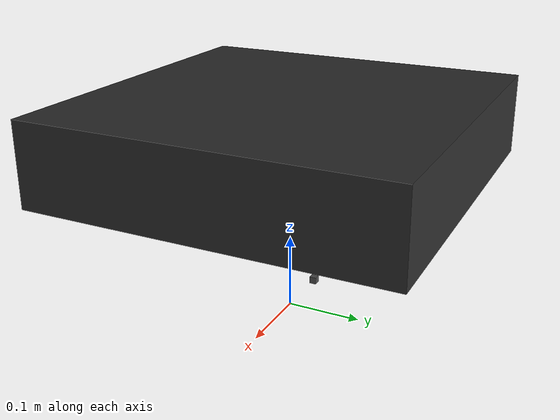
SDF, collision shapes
<?xml version="1.0" ?>
<sdf version="1.5">
  <model name='iris_downward_camera'>
    <include>
      <uri>model://px4vision</uri>
    </include>

    <include>
      <uri>model://monocular_camera</uri>
      <pose>-0.08 0 0.0 0 1.5707963 0</pose>
    </include>
    <joint name="monocular_camera_joint" type="fixed">
      <parent>px4vision::base_link</parent>
      <child>monocular_camera::link</child>
      <axis>
        <limit>
          <lower>0</lower>
          <upper>0</upper>
        </limit>
        <xyz>0 0 0</xyz>
      </axis>
    </joint>

  </model>
</sdf>

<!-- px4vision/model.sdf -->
<sdf version='1.9'>
  <model name='px4vision'>
    <pose>0 0 .24 0 0 0</pose>
    <self_collide>false</self_collide>
    <static>false</static>
    <link name='base_link'>
      <pose>0 0 0 0 0 0</pose>
      <inertial>
        <pose>0 0 0 0 0 0</pose>
        <mass>1.5</mass>
        <inertia>
          <ixx>0.029125</ixx>
          <ixy>0</ixy>
          <ixz>0</ixz>
          <iyy>0.029125</iyy>
          <iyz>0</iyz>
          <izz>0.055225</izz>
        </inertia>
      </inertial>
      <gravity>1</gravity>
      <velocity_decay/>
      <collision name='base_link_inertia_collision'>
        <pose>0 0 0 0 0 0</pose>
        <geometry>
          <box>
            <size>0.47 0.47 0.11</size>
          </box>
        </geometry>
        <surface>
          <contact>
            <ode>
              <min_depth>0.001</min_depth>
              <max_vel>0</max_vel>
            </ode>
          </contact>
          <friction>
            <ode/>
          </friction>
        </surface>
      </collision>
      <visual name='base_link_inertia_visual'>
        <pose>0 0 0 1.5707 0 0.01</pose>
        <geometry>
          <mesh>
            <scale>0.001 0.001 0.001</scale>
            <uri>model://px4vision/meshes/body.dae</uri>
          </mesh>
        </geometry>
        <material> <!-- DarkGrey-->
          <ambient>0.175 0.175 0.175 1.0</ambient>
          <diffuse>0.175 0.175 0.175 1.0</diffuse>
          <specular>0.175 0.175 0.175 1.0</specular>
        </material>
      </visual>
      <sensor name="air_pressure_sensor" type="air_pressure">
        <always_on>1</always_on>
        <update_rate>50</update_rate>
        <air_pressure>
          <pressure>
            <noise type="gaussian">
              <mean>0</mean>
              <stddev>0.01</stddev>
            </noise>
          </pressure>
        </air_pressure>
      </sensor>
      <sensor name="magnetometer_sensor" type="magnetometer">
        <always_on>1</always_on>
        <update_rate>100</update_rate>
        <magnetometer>
          <!-- TODO: update to fix units and coordinate system when we move past Harmonic -->
          <!-- See https://github.com/gazebosim/gz-sim/pull/2460 -->
          <!-- 3mgauss RMS: NOTE: noise is in tesla but sensor reports data in gauss -->
          <!-- Noise modeled after IIS2MDC -->
          <x>
            <noise type="gaussian">
              <stddev>0.0001</stddev>
            </noise>
          </x>
          <y>
            <noise type="gaussian">
              <stddev>0.0001</stddev>
            </noise>
          </y>
          <z>
            <noise type="gaussian">
              <stddev>0.0001</stddev>
            </noise>
          </z>
        </magnetometer>
      </sensor>
      <sensor name="navsat_sensor" type="navsat">
        <always_on>1</always_on>
        <update_rate>30</update_rate>
      </sensor>
      <sensor name="imu_sensor" type="imu">
        <always_on>1</always_on>
        <update_rate>250</update_rate>
        <imu>
          <angular_velocity>
            <x>
              <noise type="gaussian">
                <mean>0</mean>
                <stddev>0.00018665</stddev>
                <dynamic_bias_stddev>3.8785e-05</dynamic_bias_stddev>
                <dynamic_bias_correlation_time>1000</dynamic_bias_correlation_time>
              </noise>
            </x>
            <y>
              <noise type="gaussian">
                <mean>0</mean>
                <stddev>0.00018665</stddev>
                <dynamic_bias_stddev>3.8785e-05</dynamic_bias_stddev>
                <dynamic_bias_correlation_time>1000</dynamic_bias_correlation_time>
              </noise>
            </y>
            <z>
              <noise type="gaussian">
                <mean>0</mean>
                <stddev>0.00018665</stddev>
                <dynamic_bias_stddev>3.8785e-05</dynamic_bias_stddev>
                <dynamic_bias_correlation_time>1000</dynamic_bias_correlation_time>
              </noise>
            </z>
          </angular_velocity>
          <linear_acceleration>
            <x>
              <noise type="gaussian">
                <mean>0</mean>
                <stddev>0.00186</stddev>
                <dynamic_bias_stddev>0.006</dynamic_bias_stddev>
                <dynamic_bias_correlation_time>300</dynamic_bias_correlation_time>
              </noise>
            </x>
            <y>
              <noise type="gaussian">
                <mean>0</mean>
                <stddev>0.00186</stddev>
                <dynamic_bias_stddev>0.006</dynamic_bias_stddev>
                <dynamic_bias_correlation_time>300</dynamic_bias_correlation_time>
              </noise>
            </y>
            <z>
              <noise type="gaussian">
                <mean>0</mean>
                <stddev>0.00186</stddev>
                <dynamic_bias_stddev>0.006</dynamic_bias_stddev>
                <dynamic_bias_correlation_time>300</dynamic_bias_correlation_time>
              </noise>
            </z>
          </linear_acceleration>
        </imu>
      </sensor>
    </link>
    <link name='rotor_0'>
      <pose>0.0935 -0.107 0.03 0 0 0</pose>
      <inertial>
        <pose>0 0 0 0 0 0</pose>
        <mass>0.005</mass>
        <inertia>
          <ixx>9.75e-07</ixx>
          <iyy>0.000273104</iyy>
          <izz>0.000274004</izz>
        </inertia>
      </inertial>
      <collision name='rotor_0_collision'>
        <pose>0 0 0 0 0 0</pose>
        <geometry>
          <cylinder>
            <length>0.005</length>
            <radius>0.128</radius>
          </cylinder>
        </geometry>
        <surface>
          <contact>
            <ode>
              <min_depth>0.001</min_depth>
              <max_vel>0</max_vel>
            </ode>
          </contact>
          <friction>
            <ode/>
          </friction>
        </surface>
      </collision>
      <visual name='rotor_0_visual'>
        <pose>0 0 0 0 0 0</pose>
        <geometry>
          <mesh>
            <scale>0.6 0.6 0.6</scale>
            <uri>model://px4vision/meshes/iris_prop_ccw.dae</uri>
          </mesh>
        </geometry>
        <material> <!-- Blue -->
          <ambient>0 0 1</ambient>
          <diffuse>0 0 1</diffuse>
          <specular>0.1 0.1 0.1 1</specular>
        </material>
      </visual>
      <gravity>1</gravity>
      <velocity_decay/>
    </link>
    <joint name='rotor_0_joint' type='revolute'>
      <child>rotor_0</child>
      <parent>base_link</parent>
      <axis>
        <xyz>0 0 1</xyz>
        <limit>
          <lower>-1e+16</lower>
          <upper>1e+16</upper>
        </limit>
        <dynamics>
          <spring_reference>0</spring_reference>
          <spring_stiffness>0</spring_stiffness>
        </dynamics>
      </axis>
    </joint>
    <link name='rotor_1'>
      <pose>-0.0935 0.107 0.03 0 0 0</pose>
      <inertial>
        <pose>0 0 0 0 0 0</pose>
        <mass>0.005</mass>
        <inertia>
          <ixx>9.75e-07</ixx>
          <iyy>0.000273104</iyy>
          <izz>0.000274004</izz>
        </inertia>
      </inertial>
      <collision name='rotor_1_collision'>
        <pose>0 0 0 0 0 0</pose>
        <geometry>
          <cylinder>
            <length>0.005</length>
            <radius>0.128</radius>
          </cylinder>
        </geometry>
        <surface>
          <contact>
            <ode>
              <min_depth>0.001</min_depth>
              <max_vel>0</max_vel>
            </ode>
          </contact>
          <friction>
            <ode/>
          </friction>
        </surface>
      </collision>
      <visual name='rotor_1_visual'>
        <pose>0 0 0 0 0 0</pose>
        <geometry>
          <mesh>
            <scale>0.6 0.6 0.6</scale>
            <uri>model://px4vision/meshes/iris_prop_ccw.dae</uri>
          </mesh>
        </geometry>
        <material> <!-- DarkGrey -->
          <ambient>0.175 0.175 0.175 1.0</ambient>
          <diffuse>0.175 0.175 0.175 1.0</diffuse>
          <specular>0.175 0.175 0.175 1.0</specular>
        </material>
      </visual>
      <gravity>1</gravity>
      <velocity_decay/>
    </link>
    <joint name='rotor_1_joint' type='revolute'>
      <child>rotor_1</child>
      <parent>base_link</parent>
      <axis>
        <xyz>0 0 1</xyz>
        <limit>
          <lower>-1e+16</lower>
          <upper>1e+16</upper>
        </limit>
        <dynamics>
          <spring_reference>0</spring_reference>
          <spring_stiffness>0</spring_stiffness>
        </dynamics>
      </axis>
    </joint>
    <link name='rotor_2'>
      <pose>0.0935 0.107 0.03 0 0 0</pose>
      <inertial>
        <pose>0 0 0 0 0 0</pose>
        <mass>0.005</mass>
        <inertia>
          <ixx>9.75e-07</ixx>
          <iyy>0.000273104</iyy>
          <izz>0.000274004</izz>
        </inertia>
      </inertial>
      <collision name='rotor_2_collision'>
        <pose>0 0 0 0 0 0</pose>
        <geometry>
          <cylinder>
            <length>0.005</length>
            <radius>0.128</radius>
          </cylinder>
        </geometry>
        <surface>
          <contact>
            <ode>
              <min_depth>0.001</min_depth>
              <max_vel>0</max_vel>
            </ode>
          </contact>
          <friction>
            <ode/>
          </friction>
        </surface>
      </collision>
      <visual name='rotor_2_visual'>
        <pose>0 0 0 0 0 0</pose>
        <geometry>
          <mesh>
            <scale>0.6 0.6 0.6</scale>
            <uri>model://px4vision/meshes/iris_prop_cw.dae</uri>
          </mesh>
        </geometry>
        <material> <!-- Blue -->
          <ambient>0 0 1</ambient>
          <diffuse>0 0 1</diffuse>
          <specular>0.1 0.1 0.1 1</specular>
        </material>
      </visual>
      <gravity>1</gravity>
      <velocity_decay/>
    </link>
    <joint name='rotor_2_joint' type='revolute'>
      <child>rotor_2</child>
      <parent>base_link</parent>
      <axis>
        <xyz>0 0 1</xyz>
        <limit>
          <lower>-1e+16</lower>
          <upper>1e+16</upper>
        </limit>
        <dynamics>
          <spring_reference>0</spring_reference>
          <spring_stiffness>0</spring_stiffness>
        </dynamics>
      </axis>
    </joint>
    <link name='rotor_3'>
      <pose>-0.0935 -0.107 0.03 0 0 0</pose>
      <inertial>
        <pose>0 0 0 0 0 0</pose>
        <mass>0.005</mass>
        <inertia>
          <ixx>9.75e-07</ixx>
          <iyy>0.000273104</iyy>
          <izz>0.000274004</izz>
        </inertia>
      </inertial>
      <collision name='rotor_3_collision'>
        <pose>0 0 0 0 0 0</pose>
        <geometry>
          <cylinder>
            <length>0.005</length>
            <radius>0.128</radius>
          </cylinder>
        </geometry>
        <surface>
          <contact>
            <ode>
              <min_depth>0.001</min_depth>
              <max_vel>0</max_vel>
            </ode>
          </contact>
          <friction>
            <ode/>
          </friction>
        </surface>
      </collision>
      <visual name='rotor_3_visual'>
        <pose>0 0 0 0 0 0</pose>
        <geometry>
          <mesh>
            <scale>0.6 0.6 0.6</scale>
            <uri>model://px4vision/meshes/iris_prop_cw.dae</uri>
          </mesh>
        </geometry>
        <material> <!-- DarkGrey -->
          <ambient>0.175 0.175 0.175 1.0</ambient>
          <diffuse>0.175 0.175 0.175 1.0</diffuse>
          <specular>0.175 0.175 0.175 1.0</specular>
        </material>
      </visual>
      <gravity>1</gravity>
      <velocity_decay/>
    </link>
    <joint name='rotor_3_joint' type='revolute'>
      <child>rotor_3</child>
      <parent>base_link</parent>
      <axis>
        <xyz>0 0 1</xyz>
        <limit>
          <lower>-1e+16</lower>
          <upper>1e+16</upper>
        </limit>
        <dynamics>
          <spring_reference>0</spring_reference>
          <spring_stiffness>0</spring_stiffness>
        </dynamics>
      </axis>
    </joint>
    <!-- TODO: add GPS plugin -->
   <plugin filename="gz-sim-multicopter-motor-model-system" name="gz::sim::systems::MulticopterMotorModel">
      <jointName>rotor_0_joint</jointName>
      <linkName>rotor_0</linkName>
      <turningDirection>ccw</turningDirection>
      <timeConstantUp>0.0125</timeConstantUp>
      <timeConstantDown>0.025</timeConstantDown>
      <maxRotVelocity>1000</maxRotVelocity>
      <motorConstant>8.54858e-06</motorConstant>
      <momentConstant>0.06</momentConstant>
      <commandSubTopic>command/motor_speed</commandSubTopic>
      <motorNumber>0</motorNumber>
      <rotorDragCoefficient>0.000806428</rotorDragCoefficient>
      <rollingMomentCoefficient>1e-06</rollingMomentCoefficient>
      <rotorVelocitySlowdownSim>10</rotorVelocitySlowdownSim>
      <motorType>velocity</motorType>
    </plugin>
   <plugin filename="gz-sim-multicopter-motor-model-system" name="gz::sim::systems::MulticopterMotorModel">
      <jointName>rotor_1_joint</jointName>
      <linkName>rotor_1</linkName>
      <turningDirection>ccw</turningDirection>
      <timeConstantUp>0.0125</timeConstantUp>
      <timeConstantDown>0.025</timeConstantDown>
      <maxRotVelocity>1000</maxRotVelocity>
      <motorConstant>8.54858e-06</motorConstant>
      <momentConstant>0.06</momentConstant>
      <commandSubTopic>command/motor_speed</commandSubTopic>
      <motorNumber>1</motorNumber>
      <rotorDragCoefficient>0.000806428</rotorDragCoefficient>
      <rollingMomentCoefficient>1e-06</rollingMomentCoefficient>
      <rotorVelocitySlowdownSim>10</rotorVelocitySlowdownSim>
      <motorType>velocity</motorType>
    </plugin>
   <plugin filename="gz-sim-multicopter-motor-model-system" name="gz::sim::systems::MulticopterMotorModel">
      <jointName>rotor_2_joint</jointName>
      <linkName>rotor_2</linkName>
      <turningDirection>cw</turningDirection>
      <timeConstantUp>0.0125</timeConstantUp>
      <timeConstantDown>0.025</timeConstantDown>
      <maxRotVelocity>1000</maxRotVelocity>
      <motorConstant>8.54858e-06</motorConstant>
      <momentConstant>0.06</momentConstant>
      <commandSubTopic>command/motor_speed</commandSubTopic>
      <motorNumber>2</motorNumber>
      <rotorDragCoefficient>0.000806428</rotorDragCoefficient>
      <rollingMomentCoefficient>1e-06</rollingMomentCoefficient>
      <rotorVelocitySlowdownSim>10</rotorVelocitySlowdownSim>
      <motorType>velocity</motorType>
    </plugin>
   <plugin filename="gz-sim-multicopter-motor-model-system" name="gz::sim::systems::MulticopterMotorModel">
      <jointName>rotor_3_joint</jointName>
      <linkName>rotor_3</linkName>
      <turningDirection>cw</turningDirection>
      <timeConstantUp>0.0125</timeConstantUp>
      <timeConstantDown>0.025</timeConstantDown>
      <maxRotVelocity>1000</maxRotVelocity>
      <motorConstant>8.54858e-06</motorConstant>
      <momentConstant>0.06</momentConstant>
      <commandSubTopic>command/motor_speed</commandSubTopic>
      <motorNumber>3</motorNumber>
      <rotorDragCoefficient>0.000806428</rotorDragCoefficient>
      <rollingMomentCoefficient>1e-06</rollingMomentCoefficient>
      <rotorVelocitySlowdownSim>10</rotorVelocitySlowdownSim>
      <motorType>velocity</motorType>
    </plugin>
  </model>
</sdf>

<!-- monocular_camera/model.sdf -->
<sdf version="1.6">
  <model name="monocular_camera">
    <pose>0 0 0.0 0 0 0</pose>
    <link name="link">
      <visual name="visual">
        <geometry>
          <box>
              <size>0.01 0.01 0.01</size>
          </box>
        </geometry>
        <material>
        <script>
            <name>Gazebo/DarkGrey</name>
            <uri>file://media/materials/scripts/gazebo.material</uri>
        </script>
        </material>
      </visual>
      <inertial>
        <mass>0.01</mass>
        <inertia>
          <ixx>0.00000415</ixx>
          <iyy>0.00000241</iyy>
          <izz>0.00000241</izz>
        </inertia>
      </inertial>
      <collision name="collision">
        <geometry>
          <box>
            <size>0.01 0.01 0.01</size>
          </box>
        </geometry>
      </collision>
      <sensor type="camera" name="monocular_camera">
        <update_rate>30</update_rate>
        <visualize>false</visualize>
        <always_on>true</always_on>
        <camera>
          <horizontal_fov>2.0</horizontal_fov>
          <image>
            <width>848</width>
            <height>800</height>
            <format>R8G8B8</format>
          </image>
          <clip>
            <near>0.1</near>
            <far>100</far>
          </clip>
          <noise>
            <type>gaussian</type>
            <mean>0.0</mean>
            <stddev>0.007</stddev>
          </noise>
        </camera>
      <plugin name="camera_controller" filename="libgazebo_ros_camera.so">
        <alwaysOn>true</alwaysOn>
        <!-- Keep this zero, update_rate will control the frame rate -->
        <updateRate>0.0</updateRate>
        <cameraName>uav_camera</cameraName>
        <imageTopicName>image_raw</imageTopicName>
        <cameraInfoTopicName>camera_info</cameraInfoTopicName>
        <frameName>camera_link</frameName>
        <hackBaseline>0.07</hackBaseline>
        <distortionK1>0.0</distortionK1>
        <distortionK2>0.0</distortionK2>
        <distortionK3>0.0</distortionK3>
        <distortionT1>0.0</distortionT1>
        <distortionT2>0.0</distortionT2>
      </plugin>

      </sensor>
    </link>
  </model>
</sdf>
